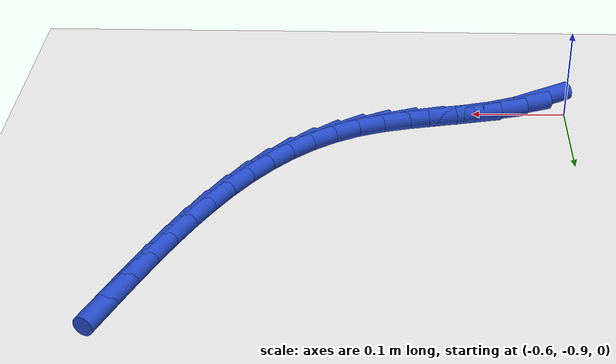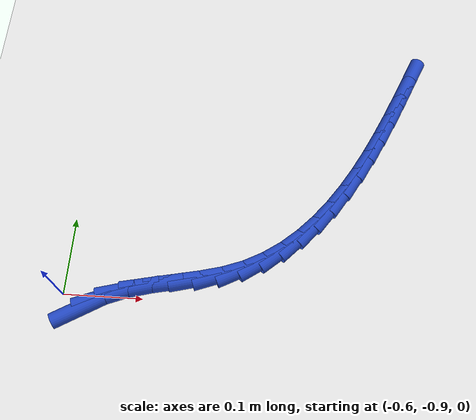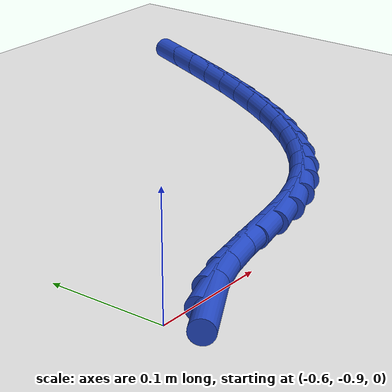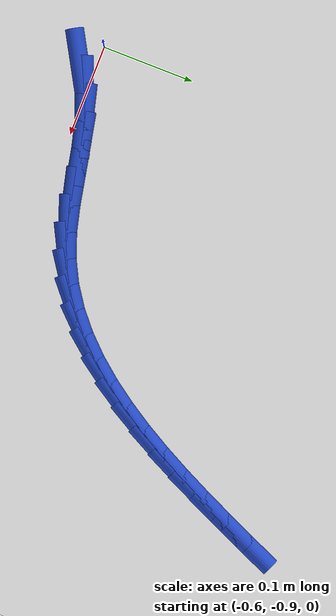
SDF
<sdf version="1.6">
 <world name="default">
  <model name="ground_plane">
   <static>1</static>
   <link name="link">
    <collision name="collision">
     <geometry><plane><normal>0 0 1</normal><size>100 100</size></plane></geometry>
     <surface><friction><ode><mu>100</mu><mu2>50</mu2></ode></friction></surface>
    </collision>
    <visual name="visual">
     <cast_shadows>0</cast_shadows>
     <geometry><plane><normal>0 0 1</normal><size>100 100</size></plane></geometry>
     <material>
      <script><uri>file://media/materials/scripts/gazebo.material</uri><name>Gazebo/WhiteGlow</name></script>
     </material>
    </visual>
   </link>
  </model>
  <model name="line">
   <link name="link_201">
    <pose>-0.5712292856375626 -0.9165484943751654 0.01 0 1.57 0.5242372223319711</pose>
    <collision name="collision">
     <geometry><cylinder><radius>0.01</radius><length>0.08</length></cylinder></geometry>
    </collision>
    <visual name="visual">
     <material>
      <script><name>Gazebo/Blue</name><uri>file://media/materials/scripts/gazebo.material</uri></script>
     </material>
     <geometry><cylinder><radius>0.01</radius><length>0.08</length></cylinder></geometry>
    </visual>
   </link>
   <link name="link_202">
    <pose>-0.5458250605976993 -0.9018597245732578 0.01 0 1.57 0.36708834120607287</pose>
    <collision name="collision">
     <geometry><cylinder><radius>0.01</radius><length>0.08</length></cylinder></geometry>
    </collision>
    <visual name="visual">
     <material>
      <script><name>Gazebo/Blue</name><uri>file://media/materials/scripts/gazebo.material</uri></script>
     </material>
     <geometry><cylinder><radius>0.01</radius><length>0.08</length></cylinder></geometry>
    </visual>
   </link>
   <link name="link_203">
    <pose>-0.5183325735619669 -0.8912883891067764 0.01 0 1.57 0.2591274443254018</pose>
    <collision name="collision">
     <geometry><cylinder><radius>0.01</radius><length>0.08</length></cylinder></geometry>
    </collision>
    <visual name="visual">
     <material>
      <script><name>Gazebo/Blue</name><uri>file://media/materials/scripts/gazebo.material</uri></script>
     </material>
     <geometry><cylinder><radius>0.01</radius><length>0.08</length></cylinder></geometry>
    </visual>
   </link>
   <link name="link_204">
    <pose>-0.4894321406776011 -0.8836272469315242 0.01 0 1.57 0.2046952250257163</pose>
    <collision name="collision">
     <geometry><cylinder><radius>0.01</radius><length>0.08</length></cylinder></geometry>
    </collision>
    <visual name="visual">
     <material>
      <script><name>Gazebo/Blue</name><uri>file://media/materials/scripts/gazebo.material</uri></script>
     </material>
     <geometry><cylinder><radius>0.01</radius><length>0.08</length></cylinder></geometry>
    </visual>
   </link>
   <link name="link_205">
    <pose>-0.45989283819462723 -0.8774948024700122 0.01 0 1.57 0.2007747102680152</pose>
    <collision name="collision">
     <geometry><cylinder><radius>0.01</radius><length>0.08</length></cylinder></geometry>
    </collision>
    <visual name="visual">
     <material>
      <script><name>Gazebo/Blue</name><uri>file://media/materials/scripts/gazebo.material</uri></script>
     </material>
     <geometry><cylinder><radius>0.01</radius><length>0.08</length></cylinder></geometry>
    </visual>
   </link>
   <link name="link_206">
    <pose>-0.4304837423630706 -0.871509560144752 0.01 0 1.57 0.24801620795709864</pose>
    <collision name="collision">
     <geometry><cylinder><radius>0.01</radius><length>0.08</length></cylinder></geometry>
    </collision>
    <visual name="visual">
     <material>
      <script><name>Gazebo/Blue</name><uri>file://media/materials/scripts/gazebo.material</uri></script>
     </material>
     <geometry><cylinder><radius>0.01</radius><length>0.08</length></cylinder></geometry>
    </visual>
   </link>
   <link name="link_207">
    <pose>-0.40197392943295635 -0.8642900243782551 0.01 0 1.57 0.34967262440001123</pose>
    <collision name="collision">
     <geometry><cylinder><radius>0.01</radius><length>0.08</length></cylinder></geometry>
    </collision>
    <visual name="visual">
     <material>
      <script><name>Gazebo/Blue</name><uri>file://media/materials/scripts/gazebo.material</uri></script>
     </material>
     <geometry><cylinder><radius>0.01</radius><length>0.08</length></cylinder></geometry>
    </visual>
   </link>
   <link name="link_208">
    <pose>-0.37511063846817994 -0.854494122721727 0.01 0 1.57 0.4776625642114099</pose>
    <collision name="collision">
     <geometry><cylinder><radius>0.01</radius><length>0.08</length></cylinder></geometry>
    </collision>
    <visual name="visual">
     <material>
      <script><name>Gazebo/Blue</name><uri>file://media/materials/scripts/gazebo.material</uri></script>
     </material>
     <geometry><cylinder><radius>0.01</radius><length>0.08</length></cylinder></geometry>
    </visual>
   </link>
   <link name="link_209">
    <pose>-0.3501900266163226 -0.8415941303411948 0.01 0 1.57 0.5987590738356678</pose>
    <collision name="collision">
     <geometry><cylinder><radius>0.01</radius><length>0.08</length></cylinder></geometry>
    </collision>
    <visual name="visual">
     <material>
      <script><name>Gazebo/Blue</name><uri>file://media/materials/scripts/gazebo.material</uri></script>
     </material>
     <geometry><cylinder><radius>0.01</radius><length>0.08</length></cylinder></geometry>
    </visual>
   </link>
   <link name="link_210">
    <pose>-0.3270838903690937 -0.8258284295673324 0.01 0 1.57 0.7083370575467388</pose>
    <collision name="collision">
     <geometry><cylinder><radius>0.01</radius><length>0.08</length></cylinder></geometry>
    </collision>
    <visual name="visual">
     <material>
      <script><name>Gazebo/Blue</name><uri>file://media/materials/scripts/gazebo.material</uri></script>
     </material>
     <geometry><cylinder><radius>0.01</radius><length>0.08</length></cylinder></geometry>
    </visual>
   </link>
   <link name="link_211">
    <pose>-0.30564753953215024 -0.8074651664898493 0.01 0 1.57 0.8046408112174459</pose>
    <collision name="collision">
     <geometry><cylinder><radius>0.01</radius><length>0.08</length></cylinder></geometry>
    </collision>
    <visual name="visual">
     <material>
      <script><name>Gazebo/Blue</name><uri>file://media/materials/scripts/gazebo.material</uri></script>
     </material>
     <geometry><cylinder><radius>0.01</radius><length>0.08</length></cylinder></geometry>
    </visual>
   </link>
   <link name="link_212">
    <pose>-0.28573628391115 -0.7867724871984555 0.01 0 1.57 0.8873354615129134</pose>
    <collision name="collision">
     <geometry><cylinder><radius>0.01</radius><length>0.08</length></cylinder></geometry>
    </collision>
    <visual name="visual">
     <material>
      <script><name>Gazebo/Blue</name><uri>file://media/materials/scripts/gazebo.material</uri></script>
     </material>
     <geometry><cylinder><radius>0.01</radius><length>0.08</length></cylinder></geometry>
    </visual>
   </link>
   <link name="link_213">
    <pose>-0.26720543331175034 -0.7640185377828604 0.01 0 1.57 0.9570097135974729</pose>
    <collision name="collision">
     <geometry><cylinder><radius>0.01</radius><length>0.08</length></cylinder></geometry>
    </collision>
    <visual name="visual">
     <material>
      <script><name>Gazebo/Blue</name><uri>file://media/materials/scripts/gazebo.material</uri></script>
     </material>
     <geometry><cylinder><radius>0.01</radius><length>0.08</length></cylinder></geometry>
    </visual>
   </link>
   <link name="link_214">
    <pose>-0.24991029753960864 -0.7394714643327737 0.01 0 1.57 1.014708661828492</pose>
    <collision name="collision">
     <geometry><cylinder><radius>0.01</radius><length>0.08</length></cylinder></geometry>
    </collision>
    <visual name="visual">
     <material>
      <script><name>Gazebo/Blue</name><uri>file://media/materials/scripts/gazebo.material</uri></script>
     </material>
     <geometry><cylinder><radius>0.01</radius><length>0.08</length></cylinder></geometry>
    </visual>
   </link>
   <link name="link_215">
    <pose>-0.23370618640038202 -0.7133994129379047 0.01 0 1.57 1.0616013894669172</pose>
    <collision name="collision">
     <geometry><cylinder><radius>0.01</radius><length>0.08</length></cylinder></geometry>
    </collision>
    <visual name="visual">
     <material>
      <script><name>Gazebo/Blue</name><uri>file://media/materials/scripts/gazebo.material</uri></script>
     </material>
     <geometry><cylinder><radius>0.01</radius><length>0.08</length></cylinder></geometry>
    </visual>
   </link>
   <link name="link_216">
    <pose>-0.21844840969972887 -0.6860705296879647 0.01 0 1.57 1.0987836678757388</pose>
    <collision name="collision">
     <geometry><cylinder><radius>0.01</radius><length>0.08</length></cylinder></geometry>
    </collision>
    <visual name="visual">
     <material>
      <script><name>Gazebo/Blue</name><uri>file://media/materials/scripts/gazebo.material</uri></script>
     </material>
     <geometry><cylinder><radius>0.01</radius><length>0.08</length></cylinder></geometry>
    </visual>
   </link>
   <link name="link_217">
    <pose>-0.20399227724330612 -0.6577529606726624 0.01 0 1.57 1.1271772594352416</pose>
    <collision name="collision">
     <geometry><cylinder><radius>0.01</radius><length>0.08</length></cylinder></geometry>
    </collision>
    <visual name="visual">
     <material>
      <script><name>Gazebo/Blue</name><uri>file://media/materials/scripts/gazebo.material</uri></script>
     </material>
     <geometry><cylinder><radius>0.01</radius><length>0.08</length></cylinder></geometry>
    </visual>
   </link>
   <link name="link_218">
    <pose>-0.19019309883677127 -0.628714851981708 0.01 0 1.57 1.1474859952062444</pose>
    <collision name="collision">
     <geometry><cylinder><radius>0.01</radius><length>0.08</length></cylinder></geometry>
    </collision>
    <visual name="visual">
     <material>
      <script><name>Gazebo/Blue</name><uri>file://media/materials/scripts/gazebo.material</uri></script>
     </material>
     <geometry><cylinder><radius>0.01</radius><length>0.08</length></cylinder></geometry>
    </visual>
   </link>
   <link name="link_219">
    <pose>-0.17690618428578178 -0.5992243497048106 0.01 0 1.57 1.160179474724595</pose>
    <collision name="collision">
     <geometry><cylinder><radius>0.01</radius><length>0.08</length></cylinder></geometry>
    </collision>
    <visual name="visual">
     <material>
      <script><name>Gazebo/Blue</name><uri>file://media/materials/scripts/gazebo.material</uri></script>
     </material>
     <geometry><cylinder><radius>0.01</radius><length>0.08</length></cylinder></geometry>
    </visual>
   </link>
   <link name="link_220">
    <pose>-0.1639868433959951 -0.5695495999316808 0.01 0 1.57 1.1654859523675902</pose>
    <collision name="collision">
     <geometry><cylinder><radius>0.01</radius><length>0.08</length></cylinder></geometry>
    </collision>
    <visual name="visual">
     <material>
      <script><name>Gazebo/Blue</name><uri>file://media/materials/scripts/gazebo.material</uri></script>
     </material>
     <geometry><cylinder><radius>0.01</radius><length>0.08</length></cylinder></geometry>
    </visual>
   </link>
  </model>
 </world>
</sdf>
